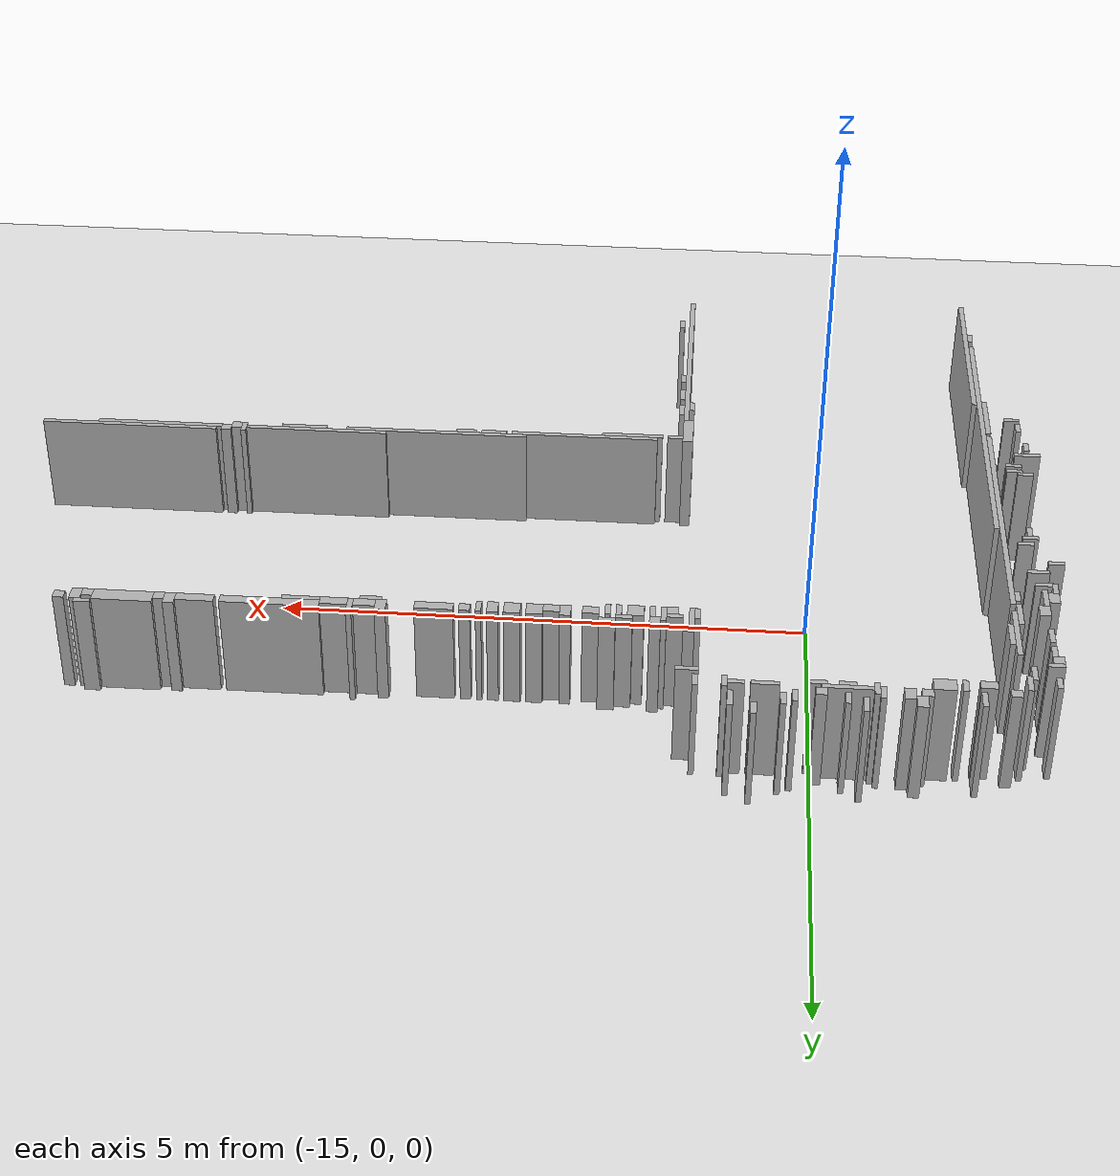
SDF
<sdf version="1.8">
 <world name="building">
  <model name="ground_plane">
   <static>true</static>
   <link name="link">
    <collision name="c"><geometry><plane><normal>0 0 1</normal><size>200 200</size></plane></geometry></collision>
    <visual name="v">
     <geometry><plane><normal>0 0 1</normal><size>200 200</size></plane></geometry>
     <material><ambient>0.9 0.9 0.9 1</ambient><diffuse>0.9 0.9 0.9 1</diffuse></material>
    </visual>
   </link>
  </model>
  <model name="walls">
   <static>true</static>
   <link name="wall_37">
    <pose>-14.475 2.425 0.500 0 0 0</pose>
    <collision name="c"><geometry><box><size>0.050 0.150 1.000</size></box></geometry></collision>
    <visual name="v">
     <geometry><box><size>0.050 0.150 1.000</size></box></geometry>
     <material><ambient>0.6 0.6 0.6 1</ambient><diffuse>0.7 0.7 0.7 1</diffuse></material>
    </visual>
   </link>
   <link name="wall_41">
    <pose>-15.425 2.300 0.500 0 0 0</pose>
    <collision name="c"><geometry><box><size>0.050 0.200 1.000</size></box></geometry></collision>
    <visual name="v">
     <geometry><box><size>0.050 0.200 1.000</size></box></geometry>
     <material><ambient>0.6 0.6 0.6 1</ambient><diffuse>0.7 0.7 0.7 1</diffuse></material>
    </visual>
   </link>
   <link name="wall_42">
    <pose>-14.275 2.300 0.500 0 0 0</pose>
    <collision name="c"><geometry><box><size>0.050 0.200 1.000</size></box></geometry></collision>
    <visual name="v">
     <geometry><box><size>0.050 0.200 1.000</size></box></geometry>
     <material><ambient>0.6 0.6 0.6 1</ambient><diffuse>0.7 0.7 0.7 1</diffuse></material>
    </visual>
   </link>
   <link name="wall_43">
    <pose>-14.725 2.275 0.500 0 0 0</pose>
    <collision name="c"><geometry><box><size>0.050 0.150 1.000</size></box></geometry></collision>
    <visual name="v">
     <geometry><box><size>0.050 0.150 1.000</size></box></geometry>
     <material><ambient>0.6 0.6 0.6 1</ambient><diffuse>0.7 0.7 0.7 1</diffuse></material>
    </visual>
   </link>
   <link name="wall_44">
    <pose>-15.900 2.225 0.500 0 0 0</pose>
    <collision name="c"><geometry><box><size>0.100 0.150 1.000</size></box></geometry></collision>
    <visual name="v">
     <geometry><box><size>0.100 0.150 1.000</size></box></geometry>
     <material><ambient>0.6 0.6 0.6 1</ambient><diffuse>0.7 0.7 0.7 1</diffuse></material>
    </visual>
   </link>
   <link name="wall_45">
    <pose>-15.275 2.225 0.500 0 0 0</pose>
    <collision name="c"><geometry><box><size>0.050 0.150 1.000</size></box></geometry></collision>
    <visual name="v">
     <geometry><box><size>0.050 0.150 1.000</size></box></geometry>
     <material><ambient>0.6 0.6 0.6 1</ambient><diffuse>0.7 0.7 0.7 1</diffuse></material>
    </visual>
   </link>
   <link name="wall_46">
    <pose>-14.825 2.225 0.500 0 0 0</pose>
    <collision name="c"><geometry><box><size>0.050 0.150 1.000</size></box></geometry></collision>
    <visual name="v">
     <geometry><box><size>0.050 0.150 1.000</size></box></geometry>
     <material><ambient>0.6 0.6 0.6 1</ambient><diffuse>0.7 0.7 0.7 1</diffuse></material>
    </visual>
   </link>
   <link name="wall_47">
    <pose>-16.425 2.150 0.500 0 0 0</pose>
    <collision name="c"><geometry><box><size>0.050 0.200 1.000</size></box></geometry></collision>
    <visual name="v">
     <geometry><box><size>0.050 0.200 1.000</size></box></geometry>
     <material><ambient>0.6 0.6 0.6 1</ambient><diffuse>0.7 0.7 0.7 1</diffuse></material>
    </visual>
   </link>
   <link name="wall_49">
    <pose>-15.800 2.125 0.500 0 0 0</pose>
    <collision name="c"><geometry><box><size>0.100 0.150 1.000</size></box></geometry></collision>
    <visual name="v">
     <geometry><box><size>0.100 0.150 1.000</size></box></geometry>
     <material><ambient>0.6 0.6 0.6 1</ambient><diffuse>0.7 0.7 0.7 1</diffuse></material>
    </visual>
   </link>
   <link name="wall_50">
    <pose>-15.575 2.125 0.500 0 0 0</pose>
    <collision name="c"><geometry><box><size>0.050 0.150 1.000</size></box></geometry></collision>
    <visual name="v">
     <geometry><box><size>0.050 0.150 1.000</size></box></geometry>
     <material><ambient>0.6 0.6 0.6 1</ambient><diffuse>0.7 0.7 0.7 1</diffuse></material>
    </visual>
   </link>
   <link name="wall_51">
    <pose>-15.050 2.150 0.500 0 0 0</pose>
    <collision name="c"><geometry><box><size>0.100 0.100 1.000</size></box></geometry></collision>
    <visual name="v">
     <geometry><box><size>0.100 0.100 1.000</size></box></geometry>
     <material><ambient>0.6 0.6 0.6 1</ambient><diffuse>0.7 0.7 0.7 1</diffuse></material>
    </visual>
   </link>
   <link name="wall_54">
    <pose>-15.950 2.100 0.500 0 0 0</pose>
    <collision name="c"><geometry><box><size>0.100 0.100 1.000</size></box></geometry></collision>
    <visual name="v">
     <geometry><box><size>0.100 0.100 1.000</size></box></geometry>
     <material><ambient>0.6 0.6 0.6 1</ambient><diffuse>0.7 0.7 0.7 1</diffuse></material>
    </visual>
   </link>
   <link name="wall_55">
    <pose>-15.525 2.075 0.500 0 0 0</pose>
    <collision name="c"><geometry><box><size>0.050 0.150 1.000</size></box></geometry></collision>
    <visual name="v">
     <geometry><box><size>0.050 0.150 1.000</size></box></geometry>
     <material><ambient>0.6 0.6 0.6 1</ambient><diffuse>0.7 0.7 0.7 1</diffuse></material>
    </visual>
   </link>
   <link name="wall_56">
    <pose>-14.225 2.075 0.500 0 0 0</pose>
    <collision name="c"><geometry><box><size>0.050 0.150 1.000</size></box></geometry></collision>
    <visual name="v">
     <geometry><box><size>0.050 0.150 1.000</size></box></geometry>
     <material><ambient>0.6 0.6 0.6 1</ambient><diffuse>0.7 0.7 0.7 1</diffuse></material>
    </visual>
   </link>
   <link name="wall_57">
    <pose>-13.975 2.075 0.500 0 0 0</pose>
    <collision name="c"><geometry><box><size>0.050 0.150 1.000</size></box></geometry></collision>
    <visual name="v">
     <geometry><box><size>0.050 0.150 1.000</size></box></geometry>
     <material><ambient>0.6 0.6 0.6 1</ambient><diffuse>0.7 0.7 0.7 1</diffuse></material>
    </visual>
   </link>
   <link name="wall_60">
    <pose>-16.700 2.050 0.500 0 0 0</pose>
    <collision name="c"><geometry><box><size>0.100 0.100 1.000</size></box></geometry></collision>
    <visual name="v">
     <geometry><box><size>0.100 0.100 1.000</size></box></geometry>
     <material><ambient>0.6 0.6 0.6 1</ambient><diffuse>0.7 0.7 0.7 1</diffuse></material>
    </visual>
   </link>
   <link name="wall_61">
    <pose>-15.275 2.075 0.500 0 0 0</pose>
    <collision name="c"><geometry><box><size>0.450 0.050 1.000</size></box></geometry></collision>
    <visual name="v">
     <geometry><box><size>0.450 0.050 1.000</size></box></geometry>
     <material><ambient>0.6 0.6 0.6 1</ambient><diffuse>0.7 0.7 0.7 1</diffuse></material>
    </visual>
   </link>
   <link name="wall_62">
    <pose>-14.575 2.075 0.500 0 0 0</pose>
    <collision name="c"><geometry><box><size>0.250 0.050 1.000</size></box></geometry></collision>
    <visual name="v">
     <geometry><box><size>0.250 0.050 1.000</size></box></geometry>
     <material><ambient>0.6 0.6 0.6 1</ambient><diffuse>0.7 0.7 0.7 1</diffuse></material>
    </visual>
   </link>
   <link name="wall_63">
    <pose>-14.325 2.075 0.500 0 0 0</pose>
    <collision name="c"><geometry><box><size>0.150 0.050 1.000</size></box></geometry></collision>
    <visual name="v">
     <geometry><box><size>0.150 0.050 1.000</size></box></geometry>
     <material><ambient>0.6 0.6 0.6 1</ambient><diffuse>0.7 0.7 0.7 1</diffuse></material>
    </visual>
   </link>
   <link name="wall_68">
    <pose>-16.275 1.975 0.500 0 0 0</pose>
    <collision name="c"><geometry><box><size>0.050 0.150 1.000</size></box></geometry></collision>
    <visual name="v">
     <geometry><box><size>0.050 0.150 1.000</size></box></geometry>
     <material><ambient>0.6 0.6 0.6 1</ambient><diffuse>0.7 0.7 0.7 1</diffuse></material>
    </visual>
   </link>
   <link name="wall_69">
    <pose>-16.100 1.975 0.500 0 0 0</pose>
    <collision name="c"><geometry><box><size>0.200 0.150 1.000</size></box></geometry></collision>
    <visual name="v">
     <geometry><box><size>0.200 0.150 1.000</size></box></geometry>
     <material><ambient>0.6 0.6 0.6 1</ambient><diffuse>0.7 0.7 0.7 1</diffuse></material>
    </visual>
   </link>
   <link name="wall_70">
    <pose>-15.275 2.025 0.500 0 0 0</pose>
    <collision name="c"><geometry><box><size>0.150 0.050 1.000</size></box></geometry></collision>
    <visual name="v">
     <geometry><box><size>0.150 0.050 1.000</size></box></geometry>
     <material><ambient>0.6 0.6 0.6 1</ambient><diffuse>0.7 0.7 0.7 1</diffuse></material>
    </visual>
   </link>
   <link name="wall_71">
    <pose>-15.025 2.025 0.500 0 0 0</pose>
    <collision name="c"><geometry><box><size>0.150 0.050 1.000</size></box></geometry></collision>
    <visual name="v">
     <geometry><box><size>0.150 0.050 1.000</size></box></geometry>
     <material><ambient>0.6 0.6 0.6 1</ambient><diffuse>0.7 0.7 0.7 1</diffuse></material>
    </visual>
   </link>
   <link name="wall_75">
    <pose>-16.825 1.900 0.500 0 0 0</pose>
    <collision name="c"><geometry><box><size>0.050 0.200 1.000</size></box></geometry></collision>
    <visual name="v">
     <geometry><box><size>0.050 0.200 1.000</size></box></geometry>
     <material><ambient>0.6 0.6 0.6 1</ambient><diffuse>0.7 0.7 0.7 1</diffuse></material>
    </visual>
   </link>
   <link name="wall_76">
    <pose>-16.475 1.950 0.500 0 0 0</pose>
    <collision name="c"><geometry><box><size>0.150 0.100 1.000</size></box></geometry></collision>
    <visual name="v">
     <geometry><box><size>0.150 0.100 1.000</size></box></geometry>
     <material><ambient>0.6 0.6 0.6 1</ambient><diffuse>0.7 0.7 0.7 1</diffuse></material>
    </visual>
   </link>
   <link name="wall_81">
    <pose>-17.075 1.875 0.500 0 0 0</pose>
    <collision name="c"><geometry><box><size>0.050 0.150 1.000</size></box></geometry></collision>
    <visual name="v">
     <geometry><box><size>0.050 0.150 1.000</size></box></geometry>
     <material><ambient>0.6 0.6 0.6 1</ambient><diffuse>0.7 0.7 0.7 1</diffuse></material>
    </visual>
   </link>
   <link name="wall_82">
    <pose>-13.900 1.925 0.500 0 0 0</pose>
    <collision name="c"><geometry><box><size>0.200 0.050 1.000</size></box></geometry></collision>
    <visual name="v">
     <geometry><box><size>0.200 0.050 1.000</size></box></geometry>
     <material><ambient>0.6 0.6 0.6 1</ambient><diffuse>0.7 0.7 0.7 1</diffuse></material>
    </visual>
   </link>
   <link name="wall_89">
    <pose>-16.875 1.750 0.500 0 0 0</pose>
    <collision name="c"><geometry><box><size>0.050 0.200 1.000</size></box></geometry></collision>
    <visual name="v">
     <geometry><box><size>0.050 0.200 1.000</size></box></geometry>
     <material><ambient>0.6 0.6 0.6 1</ambient><diffuse>0.7 0.7 0.7 1</diffuse></material>
    </visual>
   </link>
   <link name="wall_116">
    <pose>-17.075 1.625 0.500 0 0 0</pose>
    <collision name="c"><geometry><box><size>0.150 0.050 1.000</size></box></geometry></collision>
    <visual name="v">
     <geometry><box><size>0.150 0.050 1.000</size></box></geometry>
     <material><ambient>0.6 0.6 0.6 1</ambient><diffuse>0.7 0.7 0.7 1</diffuse></material>
    </visual>
   </link>
   <link name="wall_142">
    <pose>-17.100 1.550 0.500 0 0 0</pose>
    <collision name="c"><geometry><box><size>0.100 0.100 1.000</size></box></geometry></collision>
    <visual name="v">
     <geometry><box><size>0.100 0.100 1.000</size></box></geometry>
     <material><ambient>0.6 0.6 0.6 1</ambient><diffuse>0.7 0.7 0.7 1</diffuse></material>
    </visual>
   </link>
   <link name="wall_192">
    <pose>-17.075 1.425 0.500 0 0 0</pose>
    <collision name="c"><geometry><box><size>0.050 0.150 1.000</size></box></geometry></collision>
    <visual name="v">
     <geometry><box><size>0.050 0.150 1.000</size></box></geometry>
     <material><ambient>0.6 0.6 0.6 1</ambient><diffuse>0.7 0.7 0.7 1</diffuse></material>
    </visual>
   </link>
   <link name="wall_193">
    <pose>-16.775 1.175 0.500 0 0 0</pose>
    <collision name="c"><geometry><box><size>0.050 0.650 1.000</size></box></geometry></collision>
    <visual name="v">
     <geometry><box><size>0.050 0.650 1.000</size></box></geometry>
     <material><ambient>0.6 0.6 0.6 1</ambient><diffuse>0.7 0.7 0.7 1</diffuse></material>
    </visual>
   </link>
   <link name="wall_234">
    <pose>-13.900 1.350 0.500 0 0 0</pose>
    <collision name="c"><geometry><box><size>0.100 0.100 1.000</size></box></geometry></collision>
    <visual name="v">
     <geometry><box><size>0.100 0.100 1.000</size></box></geometry>
     <material><ambient>0.6 0.6 0.6 1</ambient><diffuse>0.7 0.7 0.7 1</diffuse></material>
    </visual>
   </link>
   <link name="wall_235">
    <pose>-8.475 1.375 0.500 0 0 0</pose>
    <collision name="c"><geometry><box><size>0.150 0.050 1.000</size></box></geometry></collision>
    <visual name="v">
     <geometry><box><size>0.150 0.050 1.000</size></box></geometry>
     <material><ambient>0.6 0.6 0.6 1</ambient><diffuse>0.7 0.7 0.7 1</diffuse></material>
    </visual>
   </link>
   <link name="wall_247">
    <pose>-16.725 1.200 0.500 0 0 0</pose>
    <collision name="c"><geometry><box><size>0.050 0.300 1.000</size></box></geometry></collision>
    <visual name="v">
     <geometry><box><size>0.050 0.300 1.000</size></box></geometry>
     <material><ambient>0.6 0.6 0.6 1</ambient><diffuse>0.7 0.7 0.7 1</diffuse></material>
    </visual>
   </link>
   <link name="wall_248">
    <pose>-10.875 1.250 0.500 0 0 0</pose>
    <collision name="c"><geometry><box><size>0.050 0.200 1.000</size></box></geometry></collision>
    <visual name="v">
     <geometry><box><size>0.050 0.200 1.000</size></box></geometry>
     <material><ambient>0.6 0.6 0.6 1</ambient><diffuse>0.7 0.7 0.7 1</diffuse></material>
    </visual>
   </link>
   <link name="wall_249">
    <pose>-9.250 1.275 0.500 0 0 0</pose>
    <collision name="c"><geometry><box><size>0.100 0.150 1.000</size></box></geometry></collision>
    <visual name="v">
     <geometry><box><size>0.100 0.150 1.000</size></box></geometry>
     <material><ambient>0.6 0.6 0.6 1</ambient><diffuse>0.7 0.7 0.7 1</diffuse></material>
    </visual>
   </link>
   <link name="wall_250">
    <pose>-8.825 1.275 0.500 0 0 0</pose>
    <collision name="c"><geometry><box><size>0.550 0.150 1.000</size></box></geometry></collision>
    <visual name="v">
     <geometry><box><size>0.550 0.150 1.000</size></box></geometry>
     <material><ambient>0.6 0.6 0.6 1</ambient><diffuse>0.7 0.7 0.7 1</diffuse></material>
    </visual>
   </link>
   <link name="wall_251">
    <pose>-8.400 1.275 0.500 0 0 0</pose>
    <collision name="c"><geometry><box><size>0.100 0.150 1.000</size></box></geometry></collision>
    <visual name="v">
     <geometry><box><size>0.100 0.150 1.000</size></box></geometry>
     <material><ambient>0.6 0.6 0.6 1</ambient><diffuse>0.7 0.7 0.7 1</diffuse></material>
    </visual>
   </link>
   <link name="wall_252">
    <pose>-8.250 1.300 0.500 0 0 0</pose>
    <collision name="c"><geometry><box><size>0.100 0.100 1.000</size></box></geometry></collision>
    <visual name="v">
     <geometry><box><size>0.100 0.100 1.000</size></box></geometry>
     <material><ambient>0.6 0.6 0.6 1</ambient><diffuse>0.7 0.7 0.7 1</diffuse></material>
    </visual>
   </link>
   <link name="wall_260">
    <pose>-17.075 1.200 0.500 0 0 0</pose>
    <collision name="c"><geometry><box><size>0.050 0.200 1.000</size></box></geometry></collision>
    <visual name="v">
     <geometry><box><size>0.050 0.200 1.000</size></box></geometry>
     <material><ambient>0.6 0.6 0.6 1</ambient><diffuse>0.7 0.7 0.7 1</diffuse></material>
    </visual>
   </link>
   <link name="wall_261">
    <pose>-13.925 1.175 0.500 0 0 0</pose>
    <collision name="c"><geometry><box><size>0.050 0.250 1.000</size></box></geometry></collision>
    <visual name="v">
     <geometry><box><size>0.050 0.250 1.000</size></box></geometry>
     <material><ambient>0.6 0.6 0.6 1</ambient><diffuse>0.7 0.7 0.7 1</diffuse></material>
    </visual>
   </link>
   <link name="wall_262">
    <pose>-13.600 1.250 0.500 0 0 0</pose>
    <collision name="c"><geometry><box><size>0.100 0.100 1.000</size></box></geometry></collision>
    <visual name="v">
     <geometry><box><size>0.100 0.100 1.000</size></box></geometry>
     <material><ambient>0.6 0.6 0.6 1</ambient><diffuse>0.7 0.7 0.7 1</diffuse></material>
    </visual>
   </link>
   <link name="wall_263">
    <pose>-13.175 1.275 0.500 0 0 0</pose>
    <collision name="c"><geometry><box><size>0.150 0.050 1.000</size></box></geometry></collision>
    <visual name="v">
     <geometry><box><size>0.150 0.050 1.000</size></box></geometry>
     <material><ambient>0.6 0.6 0.6 1</ambient><diffuse>0.7 0.7 0.7 1</diffuse></material>
    </visual>
   </link>
   <link name="wall_264">
    <pose>-11.150 1.225 0.500 0 0 0</pose>
    <collision name="c"><geometry><box><size>0.100 0.150 1.000</size></box></geometry></collision>
    <visual name="v">
     <geometry><box><size>0.100 0.150 1.000</size></box></geometry>
     <material><ambient>0.6 0.6 0.6 1</ambient><diffuse>0.7 0.7 0.7 1</diffuse></material>
    </visual>
   </link>
   <link name="wall_265">
    <pose>-10.150 1.250 0.500 0 0 0</pose>
    <collision name="c"><geometry><box><size>0.900 0.100 1.000</size></box></geometry></collision>
    <visual name="v">
     <geometry><box><size>0.900 0.100 1.000</size></box></geometry>
     <material><ambient>0.6 0.6 0.6 1</ambient><diffuse>0.7 0.7 0.7 1</diffuse></material>
    </visual>
   </link>
   <link name="wall_266">
    <pose>-9.475 1.250 0.500 0 0 0</pose>
    <collision name="c"><geometry><box><size>0.350 0.100 1.000</size></box></geometry></collision>
    <visual name="v">
     <geometry><box><size>0.350 0.100 1.000</size></box></geometry>
     <material><ambient>0.6 0.6 0.6 1</ambient><diffuse>0.7 0.7 0.7 1</diffuse></material>
    </visual>
   </link>
   <link name="wall_267">
    <pose>-9.150 1.250 0.500 0 0 0</pose>
    <collision name="c"><geometry><box><size>0.100 0.100 1.000</size></box></geometry></collision>
    <visual name="v">
     <geometry><box><size>0.100 0.100 1.000</size></box></geometry>
     <material><ambient>0.6 0.6 0.6 1</ambient><diffuse>0.7 0.7 0.7 1</diffuse></material>
    </visual>
   </link>
   <link name="wall_268">
    <pose>-8.500 1.250 0.500 0 0 0</pose>
    <collision name="c"><geometry><box><size>0.100 0.100 1.000</size></box></geometry></collision>
    <visual name="v">
     <geometry><box><size>0.100 0.100 1.000</size></box></geometry>
     <material><ambient>0.6 0.6 0.6 1</ambient><diffuse>0.7 0.7 0.7 1</diffuse></material>
    </visual>
   </link>
   <link name="wall_270">
    <pose>-13.675 1.150 0.500 0 0 0</pose>
    <collision name="c"><geometry><box><size>0.050 0.200 1.000</size></box></geometry></collision>
    <visual name="v">
     <geometry><box><size>0.050 0.200 1.000</size></box></geometry>
     <material><ambient>0.6 0.6 0.6 1</ambient><diffuse>0.7 0.7 0.7 1</diffuse></material>
    </visual>
   </link>
   <link name="wall_271">
    <pose>-13.325 1.225 0.500 0 0 0</pose>
    <collision name="c"><geometry><box><size>0.150 0.050 1.000</size></box></geometry></collision>
    <visual name="v">
     <geometry><box><size>0.150 0.050 1.000</size></box></geometry>
     <material><ambient>0.6 0.6 0.6 1</ambient><diffuse>0.7 0.7 0.7 1</diffuse></material>
    </visual>
   </link>
   <link name="wall_272">
    <pose>-12.800 1.175 0.500 0 0 0</pose>
    <collision name="c"><geometry><box><size>0.100 0.150 1.000</size></box></geometry></collision>
    <visual name="v">
     <geometry><box><size>0.100 0.150 1.000</size></box></geometry>
     <material><ambient>0.6 0.6 0.6 1</ambient><diffuse>0.7 0.7 0.7 1</diffuse></material>
    </visual>
   </link>
   <link name="wall_273">
    <pose>-12.525 1.175 0.500 0 0 0</pose>
    <collision name="c"><geometry><box><size>0.150 0.150 1.000</size></box></geometry></collision>
    <visual name="v">
     <geometry><box><size>0.150 0.150 1.000</size></box></geometry>
     <material><ambient>0.6 0.6 0.6 1</ambient><diffuse>0.7 0.7 0.7 1</diffuse></material>
    </visual>
   </link>
   <link name="wall_274">
    <pose>-12.325 1.175 0.500 0 0 0</pose>
    <collision name="c"><geometry><box><size>0.150 0.150 1.000</size></box></geometry></collision>
    <visual name="v">
     <geometry><box><size>0.150 0.150 1.000</size></box></geometry>
     <material><ambient>0.6 0.6 0.6 1</ambient><diffuse>0.7 0.7 0.7 1</diffuse></material>
    </visual>
   </link>
   <link name="wall_275">
    <pose>-12.150 1.175 0.500 0 0 0</pose>
    <collision name="c"><geometry><box><size>0.100 0.150 1.000</size></box></geometry></collision>
    <visual name="v">
     <geometry><box><size>0.100 0.150 1.000</size></box></geometry>
     <material><ambient>0.6 0.6 0.6 1</ambient><diffuse>0.7 0.7 0.7 1</diffuse></material>
    </visual>
   </link>
   <link name="wall_276">
    <pose>-12.025 1.175 0.500 0 0 0</pose>
    <collision name="c"><geometry><box><size>0.050 0.150 1.000</size></box></geometry></collision>
    <visual name="v">
     <geometry><box><size>0.050 0.150 1.000</size></box></geometry>
     <material><ambient>0.6 0.6 0.6 1</ambient><diffuse>0.7 0.7 0.7 1</diffuse></material>
    </visual>
   </link>
   <link name="wall_277">
    <pose>-11.900 1.200 0.500 0 0 0</pose>
    <collision name="c"><geometry><box><size>0.100 0.100 1.000</size></box></geometry></collision>
    <visual name="v">
     <geometry><box><size>0.100 0.100 1.000</size></box></geometry>
     <material><ambient>0.6 0.6 0.6 1</ambient><diffuse>0.7 0.7 0.7 1</diffuse></material>
    </visual>
   </link>
   <link name="wall_278">
    <pose>-11.625 1.200 0.500 0 0 0</pose>
    <collision name="c"><geometry><box><size>0.350 0.100 1.000</size></box></geometry></collision>
    <visual name="v">
     <geometry><box><size>0.350 0.100 1.000</size></box></geometry>
     <material><ambient>0.6 0.6 0.6 1</ambient><diffuse>0.7 0.7 0.7 1</diffuse></material>
    </visual>
   </link>
   <link name="wall_279">
    <pose>-11.000 1.200 0.500 0 0 0</pose>
    <collision name="c"><geometry><box><size>0.200 0.100 1.000</size></box></geometry></collision>
    <visual name="v">
     <geometry><box><size>0.200 0.100 1.000</size></box></geometry>
     <material><ambient>0.6 0.6 0.6 1</ambient><diffuse>0.7 0.7 0.7 1</diffuse></material>
    </visual>
   </link>
   <link name="wall_280">
    <pose>-10.725 1.200 0.500 0 0 0</pose>
    <collision name="c"><geometry><box><size>0.250 0.100 1.000</size></box></geometry></collision>
    <visual name="v">
     <geometry><box><size>0.250 0.100 1.000</size></box></geometry>
     <material><ambient>0.6 0.6 0.6 1</ambient><diffuse>0.7 0.7 0.7 1</diffuse></material>
    </visual>
   </link>
   <link name="wall_281">
    <pose>-13.975 1.125 0.500 0 0 0</pose>
    <collision name="c"><geometry><box><size>0.050 0.150 1.000</size></box></geometry></collision>
    <visual name="v">
     <geometry><box><size>0.050 0.150 1.000</size></box></geometry>
     <material><ambient>0.6 0.6 0.6 1</ambient><diffuse>0.7 0.7 0.7 1</diffuse></material>
    </visual>
   </link>
   <link name="wall_282">
    <pose>-13.775 1.175 0.500 0 0 0</pose>
    <collision name="c"><geometry><box><size>0.150 0.050 1.000</size></box></geometry></collision>
    <visual name="v">
     <geometry><box><size>0.150 0.050 1.000</size></box></geometry>
     <material><ambient>0.6 0.6 0.6 1</ambient><diffuse>0.7 0.7 0.7 1</diffuse></material>
    </visual>
   </link>
   <link name="wall_283">
    <pose>-13.575 1.125 0.500 0 0 0</pose>
    <collision name="c"><geometry><box><size>0.050 0.150 1.000</size></box></geometry></collision>
    <visual name="v">
     <geometry><box><size>0.050 0.150 1.000</size></box></geometry>
     <material><ambient>0.6 0.6 0.6 1</ambient><diffuse>0.7 0.7 0.7 1</diffuse></material>
    </visual>
   </link>
   <link name="wall_284">
    <pose>-13.425 1.125 0.500 0 0 0</pose>
    <collision name="c"><geometry><box><size>0.150 0.150 1.000</size></box></geometry></collision>
    <visual name="v">
     <geometry><box><size>0.150 0.150 1.000</size></box></geometry>
     <material><ambient>0.6 0.6 0.6 1</ambient><diffuse>0.7 0.7 0.7 1</diffuse></material>
    </visual>
   </link>
   <link name="wall_285">
    <pose>-13.275 1.125 0.500 0 0 0</pose>
    <collision name="c"><geometry><box><size>0.050 0.150 1.000</size></box></geometry></collision>
    <visual name="v">
     <geometry><box><size>0.050 0.150 1.000</size></box></geometry>
     <material><ambient>0.6 0.6 0.6 1</ambient><diffuse>0.7 0.7 0.7 1</diffuse></material>
    </visual>
   </link>
   <link name="wall_286">
    <pose>-13.175 1.125 0.500 0 0 0</pose>
    <collision name="c"><geometry><box><size>0.050 0.150 1.000</size></box></geometry></collision>
    <visual name="v">
     <geometry><box><size>0.050 0.150 1.000</size></box></geometry>
     <material><ambient>0.6 0.6 0.6 1</ambient><diffuse>0.7 0.7 0.7 1</diffuse></material>
    </visual>
   </link>
   <link name="wall_287">
    <pose>-13.025 1.150 0.500 0 0 0</pose>
    <collision name="c"><geometry><box><size>0.150 0.100 1.000</size></box></geometry></collision>
    <visual name="v">
     <geometry><box><size>0.150 0.100 1.000</size></box></geometry>
     <material><ambient>0.6 0.6 0.6 1</ambient><diffuse>0.7 0.7 0.7 1</diffuse></material>
    </visual>
   </link>
   <link name="wall_288">
    <pose>-12.675 1.150 0.500 0 0 0</pose>
    <collision name="c"><geometry><box><size>0.150 0.100 1.000</size></box></geometry></collision>
    <visual name="v">
     <geometry><box><size>0.150 0.100 1.000</size></box></geometry>
     <material><ambient>0.6 0.6 0.6 1</ambient><diffuse>0.7 0.7 0.7 1</diffuse></material>
    </visual>
   </link>
   <link name="wall_289">
    <pose>-10.425 1.175 0.500 0 0 0</pose>
    <collision name="c"><geometry><box><size>0.350 0.050 1.000</size></box></geometry></collision>
    <visual name="v">
     <geometry><box><size>0.350 0.050 1.000</size></box></geometry>
     <material><ambient>0.6 0.6 0.6 1</ambient><diffuse>0.7 0.7 0.7 1</diffuse></material>
    </visual>
   </link>
   <link name="wall_290">
    <pose>-13.750 1.100 0.500 0 0 0</pose>
    <collision name="c"><geometry><box><size>0.100 0.100 1.000</size></box></geometry></collision>
    <visual name="v">
     <geometry><box><size>0.100 0.100 1.000</size></box></geometry>
     <material><ambient>0.6 0.6 0.6 1</ambient><diffuse>0.7 0.7 0.7 1</diffuse></material>
    </visual>
   </link>
   <link name="wall_291">
    <pose>-11.050 1.125 0.500 0 0 0</pose>
    <collision name="c"><geometry><box><size>0.200 0.050 1.000</size></box></geometry></collision>
    <visual name="v">
     <geometry><box><size>0.200 0.050 1.000</size></box></geometry>
     <material><ambient>0.6 0.6 0.6 1</ambient><diffuse>0.7 0.7 0.7 1</diffuse></material>
    </visual>
   </link>
   <link name="wall_293">
    <pose>-16.825 0.900 0.500 0 0 0</pose>
    <collision name="c"><geometry><box><size>0.050 0.300 1.000</size></box></geometry></collision>
    <visual name="v">
     <geometry><box><size>0.050 0.300 1.000</size></box></geometry>
     <material><ambient>0.6 0.6 0.6 1</ambient><diffuse>0.7 0.7 0.7 1</diffuse></material>
    </visual>
   </link>
   <link name="wall_297">
    <pose>-17.050 0.825 0.500 0 0 0</pose>
    <collision name="c"><geometry><box><size>0.100 0.150 1.000</size></box></geometry></collision>
    <visual name="v">
     <geometry><box><size>0.100 0.150 1.000</size></box></geometry>
     <material><ambient>0.6 0.6 0.6 1</ambient><diffuse>0.7 0.7 0.7 1</diffuse></material>
    </visual>
   </link>
   <link name="wall_299">
    <pose>-17.075 0.625 0.500 0 0 0</pose>
    <collision name="c"><geometry><box><size>0.050 0.250 1.000</size></box></geometry></collision>
    <visual name="v">
     <geometry><box><size>0.050 0.250 1.000</size></box></geometry>
     <material><ambient>0.6 0.6 0.6 1</ambient><diffuse>0.7 0.7 0.7 1</diffuse></material>
    </visual>
   </link>
   <link name="wall_300">
    <pose>-16.775 -0.675 0.500 0 0 0</pose>
    <collision name="c"><geometry><box><size>0.050 2.850 1.000</size></box></geometry></collision>
    <visual name="v">
     <geometry><box><size>0.050 2.850 1.000</size></box></geometry>
     <material><ambient>0.6 0.6 0.6 1</ambient><diffuse>0.7 0.7 0.7 1</diffuse></material>
    </visual>
   </link>
   <link name="wall_301">
    <pose>-17.150 0.625 0.500 0 0 0</pose>
    <collision name="c"><geometry><box><size>0.100 0.150 1.000</size></box></geometry></collision>
    <visual name="v">
     <geometry><box><size>0.100 0.150 1.000</size></box></geometry>
     <material><ambient>0.6 0.6 0.6 1</ambient><diffuse>0.7 0.7 0.7 1</diffuse></material>
    </visual>
   </link>
   <link name="wall_302">
    <pose>-16.825 0.625 0.500 0 0 0</pose>
    <collision name="c"><geometry><box><size>0.050 0.150 1.000</size></box></geometry></collision>
    <visual name="v">
     <geometry><box><size>0.050 0.150 1.000</size></box></geometry>
     <material><ambient>0.6 0.6 0.6 1</ambient><diffuse>0.7 0.7 0.7 1</diffuse></material>
    </visual>
   </link>
   <link name="wall_304">
    <pose>-17.175 0.475 0.500 0 0 0</pose>
    <collision name="c"><geometry><box><size>0.050 0.150 1.000</size></box></geometry></collision>
    <visual name="v">
     <geometry><box><size>0.050 0.150 1.000</size></box></geometry>
     <material><ambient>0.6 0.6 0.6 1</ambient><diffuse>0.7 0.7 0.7 1</diffuse></material>
    </visual>
   </link>
   <link name="wall_308">
    <pose>-17.075 0.425 0.500 0 0 0</pose>
    <collision name="c"><geometry><box><size>0.150 0.050 1.000</size></box></geometry></collision>
    <visual name="v">
     <geometry><box><size>0.150 0.050 1.000</size></box></geometry>
     <material><ambient>0.6 0.6 0.6 1</ambient><diffuse>0.7 0.7 0.7 1</diffuse></material>
    </visual>
   </link>
   <link name="wall_309">
    <pose>-17.050 0.225 0.500 0 0 0</pose>
    <collision name="c"><geometry><box><size>0.200 0.050 1.000</size></box></geometry></collision>
    <visual name="v">
     <geometry><box><size>0.200 0.050 1.000</size></box></geometry>
     <material><ambient>0.6 0.6 0.6 1</ambient><diffuse>0.7 0.7 0.7 1</diffuse></material>
    </visual>
   </link>
   <link name="wall_312">
    <pose>-17.225 0.075 0.500 0 0 0</pose>
    <collision name="c"><geometry><box><size>0.150 0.050 1.000</size></box></geometry></collision>
    <visual name="v">
     <geometry><box><size>0.150 0.050 1.000</size></box></geometry>
     <material><ambient>0.6 0.6 0.6 1</ambient><diffuse>0.7 0.7 0.7 1</diffuse></material>
    </visual>
   </link>
   <link name="wall_316">
    <pose>-16.975 -0.225 0.500 0 0 0</pose>
    <collision name="c"><geometry><box><size>0.150 0.050 1.000</size></box></geometry></collision>
    <visual name="v">
     <geometry><box><size>0.150 0.050 1.000</size></box></geometry>
     <material><ambient>0.6 0.6 0.6 1</ambient><diffuse>0.7 0.7 0.7 1</diffuse></material>
    </visual>
   </link>
   <link name="wall_318">
    <pose>-17.025 -0.325 0.500 0 0 0</pose>
    <collision name="c"><geometry><box><size>0.150 0.050 1.000</size></box></geometry></collision>
    <visual name="v">
     <geometry><box><size>0.150 0.050 1.000</size></box></geometry>
     <material><ambient>0.6 0.6 0.6 1</ambient><diffuse>0.7 0.7 0.7 1</diffuse></material>
    </visual>
   </link>
   <link name="wall_320">
    <pose>-17.025 -0.425 0.500 0 0 0</pose>
    <collision name="c"><geometry><box><size>0.050 0.150 1.000</size></box></geometry></collision>
    <visual name="v">
     <geometry><box><size>0.050 0.150 1.000</size></box></geometry>
     <material><ambient>0.6 0.6 0.6 1</ambient><diffuse>0.7 0.7 0.7 1</diffuse></material>
    </visual>
   </link>
   <link name="wall_322">
    <pose>-16.725 -2.175 0.500 0 0 0</pose>
    <collision name="c"><geometry><box><size>0.050 3.450 1.000</size></box></geometry></collision>
    <visual name="v">
     <geometry><box><size>0.050 3.450 1.000</size></box></geometry>
     <material><ambient>0.6 0.6 0.6 1</ambient><diffuse>0.7 0.7 0.7 1</diffuse></material>
    </visual>
   </link>
   <link name="wall_369">
    <pose>-17.075 -1.425 0.500 0 0 0</pose>
    <collision name="c"><geometry><box><size>0.150 0.050 1.000</size></box></geometry></collision>
    <visual name="v">
     <geometry><box><size>0.150 0.050 1.000</size></box></geometry>
     <material><ambient>0.6 0.6 0.6 1</ambient><diffuse>0.7 0.7 0.7 1</diffuse></material>
    </visual>
   </link>
   <link name="wall_379">
    <pose>-16.975 -1.475 0.500 0 0 0</pose>
    <collision name="c"><geometry><box><size>0.150 0.050 1.000</size></box></geometry></collision>
    <visual name="v">
     <geometry><box><size>0.150 0.050 1.000</size></box></geometry>
     <material><ambient>0.6 0.6 0.6 1</ambient><diffuse>0.7 0.7 0.7 1</diffuse></material>
    </visual>
   </link>
   <link name="wall_401">
    <pose>-16.975 -1.575 0.500 0 0 0</pose>
    <collision name="c"><geometry><box><size>0.150 0.050 1.000</size></box></geometry></collision>
    <visual name="v">
     <geometry><box><size>0.150 0.050 1.000</size></box></geometry>
     <material><ambient>0.6 0.6 0.6 1</ambient><diffuse>0.7 0.7 0.7 1</diffuse></material>
    </visual>
   </link>
   <link name="wall_409">
    <pose>-9.375 -1.675 0.500 0 0 0</pose>
    <collision name="c"><geometry><box><size>0.050 0.150 1.000</size></box></geometry></collision>
    <visual name="v">
     <geometry><box><size>0.050 0.150 1.000</size></box></geometry>
     <material><ambient>0.6 0.6 0.6 1</ambient><diffuse>0.7 0.7 0.7 1</diffuse></material>
    </visual>
   </link>
   <link name="wall_410">
    <pose>-9.200 -1.650 0.500 0 0 0</pose>
    <collision name="c"><geometry><box><size>0.100 0.100 1.000</size></box></geometry></collision>
    <visual name="v">
     <geometry><box><size>0.100 0.100 1.000</size></box></geometry>
     <material><ambient>0.6 0.6 0.6 1</ambient><diffuse>0.7 0.7 0.7 1</diffuse></material>
    </visual>
   </link>
   <link name="wall_411">
    <pose>-8.225 -1.625 0.500 0 0 0</pose>
    <collision name="c"><geometry><box><size>1.750 0.050 1.000</size></box></geometry></collision>
    <visual name="v">
     <geometry><box><size>1.750 0.050 1.000</size></box></geometry>
     <material><ambient>0.6 0.6 0.6 1</ambient><diffuse>0.7 0.7 0.7 1</diffuse></material>
    </visual>
   </link>
   <link name="wall_414">
    <pose>-10.100 -1.675 0.500 0 0 0</pose>
    <collision name="c"><geometry><box><size>1.400 0.050 1.000</size></box></geometry></collision>
    <visual name="v">
     <geometry><box><size>1.400 0.050 1.000</size></box></geometry>
     <material><ambient>0.6 0.6 0.6 1</ambient><diffuse>0.7 0.7 0.7 1</diffuse></material>
    </visual>
   </link>
   <link name="wall_415">
    <pose>-9.300 -1.700 0.500 0 0 0</pose>
    <collision name="c"><geometry><box><size>0.100 0.100 1.000</size></box></geometry></collision>
    <visual name="v">
     <geometry><box><size>0.100 0.100 1.000</size></box></geometry>
     <material><ambient>0.6 0.6 0.6 1</ambient><diffuse>0.7 0.7 0.7 1</diffuse></material>
    </visual>
   </link>
   <link name="wall_416">
    <pose>-8.525 -1.675 0.500 0 0 0</pose>
    <collision name="c"><geometry><box><size>1.250 0.050 1.000</size></box></geometry></collision>
    <visual name="v">
     <geometry><box><size>1.250 0.050 1.000</size></box></geometry>
     <material><ambient>0.6 0.6 0.6 1</ambient><diffuse>0.7 0.7 0.7 1</diffuse></material>
    </visual>
   </link>
   <link name="wall_420">
    <pose>-11.300 -1.725 0.500 0 0 0</pose>
    <collision name="c"><geometry><box><size>1.800 0.050 1.000</size></box></geometry></collision>
    <visual name="v">
     <geometry><box><size>1.800 0.050 1.000</size></box></geometry>
     <material><ambient>0.6 0.6 0.6 1</ambient><diffuse>0.7 0.7 0.7 1</diffuse></material>
    </visual>
   </link>
   <link name="wall_421">
    <pose>-9.975 -1.725 0.500 0 0 0</pose>
    <collision name="c"><geometry><box><size>0.450 0.050 1.000</size></box></geometry></collision>
    <visual name="v">
     <geometry><box><size>0.450 0.050 1.000</size></box></geometry>
     <material><ambient>0.6 0.6 0.6 1</ambient><diffuse>0.7 0.7 0.7 1</diffuse></material>
    </visual>
   </link>
   <link name="wall_422">
    <pose>-17.125 -1.775 0.500 0 0 0</pose>
    <collision name="c"><geometry><box><size>0.250 0.050 1.000</size></box></geometry></collision>
    <visual name="v">
     <geometry><box><size>0.250 0.050 1.000</size></box></geometry>
     <material><ambient>0.6 0.6 0.6 1</ambient><diffuse>0.7 0.7 0.7 1</diffuse></material>
    </visual>
   </link>
   <link name="wall_423">
    <pose>-13.800 -1.950 0.500 0 0 0</pose>
    <collision name="c"><geometry><box><size>0.100 0.400 1.000</size></box></geometry></collision>
    <visual name="v">
     <geometry><box><size>0.100 0.400 1.000</size></box></geometry>
     <material><ambient>0.6 0.6 0.6 1</ambient><diffuse>0.7 0.7 0.7 1</diffuse></material>
    </visual>
   </link>
   <link name="wall_424">
    <pose>-12.775 -1.775 0.500 0 0 0</pose>
    <collision name="c"><geometry><box><size>1.450 0.050 1.000</size></box></geometry></collision>
    <visual name="v">
     <geometry><box><size>1.450 0.050 1.000</size></box></geometry>
     <material><ambient>0.6 0.6 0.6 1</ambient><diffuse>0.7 0.7 0.7 1</diffuse></material>
    </visual>
   </link>
   <link name="wall_425">
    <pose>-11.875 -1.775 0.500 0 0 0</pose>
    <collision name="c"><geometry><box><size>0.250 0.050 1.000</size></box></geometry></collision>
    <visual name="v">
     <geometry><box><size>0.250 0.050 1.000</size></box></geometry>
     <material><ambient>0.6 0.6 0.6 1</ambient><diffuse>0.7 0.7 0.7 1</diffuse></material>
    </visual>
   </link>
   <link name="wall_426">
    <pose>-11.600 -1.775 0.500 0 0 0</pose>
    <collision name="c"><geometry><box><size>0.200 0.050 1.000</size></box></geometry></collision>
    <visual name="v">
     <geometry><box><size>0.200 0.050 1.000</size></box></geometry>
     <material><ambient>0.6 0.6 0.6 1</ambient><diffuse>0.7 0.7 0.7 1</diffuse></material>
    </visual>
   </link>
   <link name="wall_427">
    <pose>-13.675 -1.825 0.500 0 0 0</pose>
    <collision name="c"><geometry><box><size>0.150 0.050 1.000</size></box></geometry></collision>
    <visual name="v">
     <geometry><box><size>0.150 0.050 1.000</size></box></geometry>
     <material><ambient>0.6 0.6 0.6 1</ambient><diffuse>0.7 0.7 0.7 1</diffuse></material>
    </visual>
   </link>
   <link name="wall_428">
    <pose>-13.250 -1.825 0.500 0 0 0</pose>
    <collision name="c"><geometry><box><size>0.600 0.050 1.000</size></box></geometry></collision>
    <visual name="v">
     <geometry><box><size>0.600 0.050 1.000</size></box></geometry>
     <material><ambient>0.6 0.6 0.6 1</ambient><diffuse>0.7 0.7 0.7 1</diffuse></material>
    </visual>
   </link>
   <link name="wall_431">
    <pose>-17.125 -1.925 0.500 0 0 0</pose>
    <collision name="c"><geometry><box><size>0.050 0.150 1.000</size></box></geometry></collision>
    <visual name="v">
     <geometry><box><size>0.050 0.150 1.000</size></box></geometry>
     <material><ambient>0.6 0.6 0.6 1</ambient><diffuse>0.7 0.7 0.7 1</diffuse></material>
    </visual>
   </link>
   <link name="wall_435">
    <pose>-16.775 -2.450 0.500 0 0 0</pose>
    <collision name="c"><geometry><box><size>0.050 0.600 1.000</size></box></geometry></collision>
    <visual name="v">
     <geometry><box><size>0.050 0.600 1.000</size></box></geometry>
     <material><ambient>0.6 0.6 0.6 1</ambient><diffuse>0.7 0.7 0.7 1</diffuse></material>
    </visual>
   </link>
   <link name="wall_436">
    <pose>-13.775 -3.375 0.500 0 0 0</pose>
    <collision name="c"><geometry><box><size>0.050 2.450 1.000</size></box></geometry></collision>
    <visual name="v">
     <geometry><box><size>0.050 2.450 1.000</size></box></geometry>
     <material><ambient>0.6 0.6 0.6 1</ambient><diffuse>0.7 0.7 0.7 1</diffuse></material>
    </visual>
   </link>
   <link name="wall_438">
    <pose>-17.075 -2.275 0.500 0 0 0</pose>
    <collision name="c"><geometry><box><size>0.050 0.150 1.000</size></box></geometry></collision>
    <visual name="v">
     <geometry><box><size>0.050 0.150 1.000</size></box></geometry>
     <material><ambient>0.6 0.6 0.6 1</ambient><diffuse>0.7 0.7 0.7 1</diffuse></material>
    </visual>
   </link>
   <link name="wall_440">
    <pose>-13.725 -2.350 0.500 0 0 0</pose>
    <collision name="c"><geometry><box><size>0.050 0.200 1.000</size></box></geometry></collision>
    <visual name="v">
     <geometry><box><size>0.050 0.200 1.000</size></box></geometry>
     <material><ambient>0.6 0.6 0.6 1</ambient><diffuse>0.7 0.7 0.7 1</diffuse></material>
    </visual>
   </link>
   <link name="wall_445">
    <pose>-13.825 -2.425 0.500 0 0 0</pose>
    <collision name="c"><geometry><box><size>0.050 0.150 1.000</size></box></geometry></collision>
    <visual name="v">
     <geometry><box><size>0.050 0.150 1.000</size></box></geometry>
     <material><ambient>0.6 0.6 0.6 1</ambient><diffuse>0.7 0.7 0.7 1</diffuse></material>
    </visual>
   </link>
   <link name="wall_449">
    <pose>-17.025 -2.425 0.500 0 0 0</pose>
    <collision name="c"><geometry><box><size>0.150 0.050 1.000</size></box></geometry></collision>
    <visual name="v">
     <geometry><box><size>0.150 0.050 1.000</size></box></geometry>
     <material><ambient>0.6 0.6 0.6 1</ambient><diffuse>0.7 0.7 0.7 1</diffuse></material>
    </visual>
   </link>
   <link name="wall_451">
    <pose>-13.725 -2.650 0.500 0 0 0</pose>
    <collision name="c"><geometry><box><size>0.050 0.200 1.000</size></box></geometry></collision>
    <visual name="v">
     <geometry><box><size>0.050 0.200 1.000</size></box></geometry>
     <material><ambient>0.6 0.6 0.6 1</ambient><diffuse>0.7 0.7 0.7 1</diffuse></material>
    </visual>
   </link>
   <link name="wall_452">
    <pose>-16.675 -3.725 0.500 0 0 0</pose>
    <collision name="c"><geometry><box><size>0.050 2.050 1.000</size></box></geometry></collision>
    <visual name="v">
     <geometry><box><size>0.050 2.050 1.000</size></box></geometry>
     <material><ambient>0.6 0.6 0.6 1</ambient><diffuse>0.7 0.7 0.7 1</diffuse></material>
    </visual>
   </link>
   <link name="wall_453">
    <pose>-13.725 -2.975 0.500 0 0 0</pose>
    <collision name="c"><geometry><box><size>0.050 0.150 1.000</size></box></geometry></collision>
    <visual name="v">
     <geometry><box><size>0.050 0.150 1.000</size></box></geometry>
     <material><ambient>0.6 0.6 0.6 1</ambient><diffuse>0.7 0.7 0.7 1</diffuse></material>
    </visual>
   </link>
   <link name="wall_463">
    <pose>-16.725 -4.075 0.500 0 0 0</pose>
    <collision name="c"><geometry><box><size>0.050 0.150 1.000</size></box></geometry></collision>
    <visual name="v">
     <geometry><box><size>0.050 0.150 1.000</size></box></geometry>
     <material><ambient>0.6 0.6 0.6 1</ambient><diffuse>0.7 0.7 0.7 1</diffuse></material>
    </visual>
   </link>
   <link name="wall_464">
    <pose>-13.675 -4.125 0.500 0 0 0</pose>
    <collision name="c"><geometry><box><size>0.050 0.150 1.000</size></box></geometry></collision>
    <visual name="v">
     <geometry><box><size>0.050 0.150 1.000</size></box></geometry>
     <material><ambient>0.6 0.6 0.6 1</ambient><diffuse>0.7 0.7 0.7 1</diffuse></material>
    </visual>
   </link>
  </model>
 </world>
</sdf>
